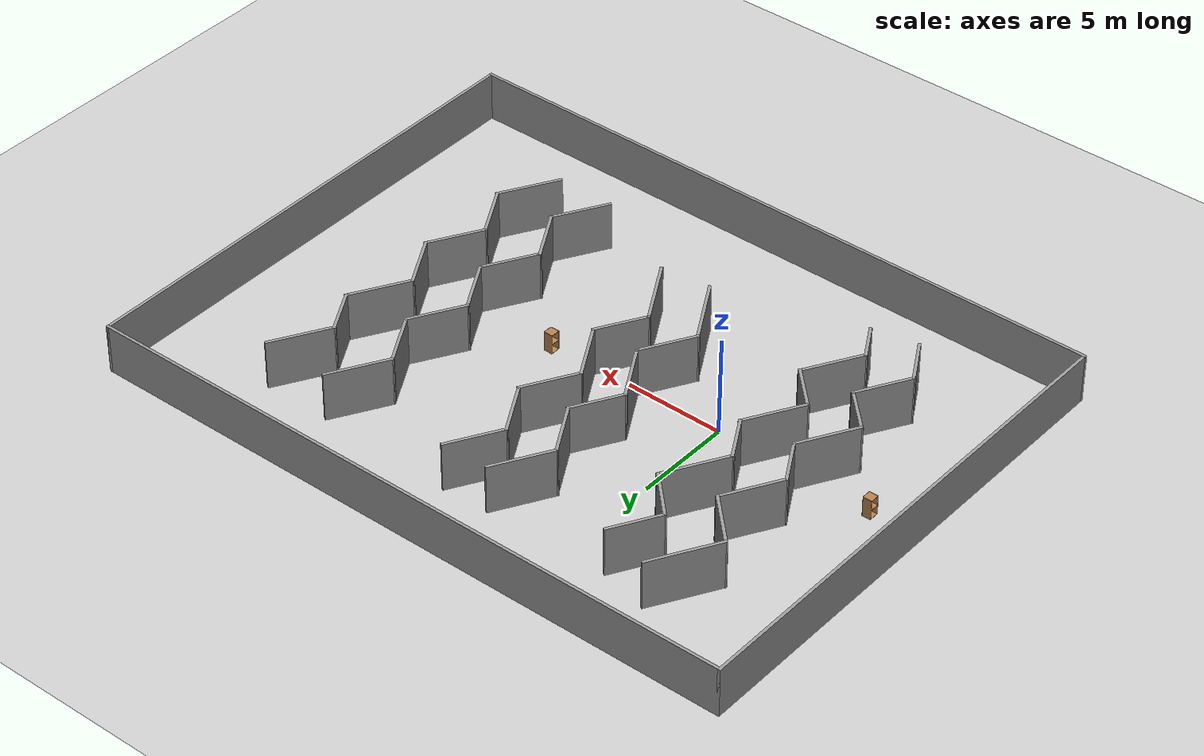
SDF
<sdf version="1.6">
 <world name="default">
  <light name="sun" type="directional">
   <pose>0 0 10 0 -0 0</pose>
   <diffuse>0.8 0.8 0.8 1</diffuse>
   <specular>0.2 0.2 0.2 1</specular>
   <attenuation>
    <range>1000</range>
    <constant>0.9</constant>
    <linear>0.01</linear>
    <quadratic>0.001</quadratic>
   </attenuation>
   <direction>-0.5 0.1 -0.9</direction>
  </light>
  <model name="ground_plane">
   <static>1</static>
   <link name="link">
    <collision name="collision">
     <geometry><plane><normal>0 0 1</normal><size>100 100</size></plane></geometry>
     <surface><friction><ode><mu>100</mu><mu2>50</mu2></ode></friction></surface>
    </collision>
    <visual name="visual">
     <cast_shadows>0</cast_shadows>
     <geometry><plane><normal>0 0 1</normal><size>100 100</size></plane></geometry>
     <material>
      <script><uri>file://media/materials/scripts/gazebo.material</uri><name>Gazebo/Grey</name></script>
     </material>
    </visual>
   </link>
  </model>
  <gravity>0 0 -9.8</gravity>
  <magnetic_field>6e-06 2.3e-05 -4.2e-05</magnetic_field>
  <atmosphere type="adiabatic"/>
  <physics name="default_physics" default="0" type="ode">
   <max_step_size>0.001</max_step_size>
   <real_time_factor>1</real_time_factor>
   <real_time_update_rate>1000</real_time_update_rate>
  </physics>
  <scene><ambient>0.4 0.4 0.4 1</ambient><background>0.7 0.7 0.7 1</background><shadows>1</shadows></scene>
  <audio><device>default</device></audio>
  <spherical_coordinates>
   <surface_model>EARTH_WGS84</surface_model>
   <latitude_deg>0</latitude_deg>
   <longitude_deg>0</longitude_deg>
   <elevation>0</elevation>
   <heading_deg>0</heading_deg>
  </spherical_coordinates>
  <model name="room4">
   <pose>6.21093 1.02307 0 0 -0 0</pose>
   <link name="Wall_1">
    <collision name="Wall_1_Collision">
     <geometry><box><size>34.25 0.15 2.5</size></box></geometry>
     <pose>0 0 1.25 0 -0 0</pose>
    </collision>
    <visual name="Wall_1_Visual">
     <pose>0 0 1.25 0 -0 0</pose>
     <geometry><box><size>34.25 0.15 2.5</size></box></geometry>
     <material>
      <script><uri>file://media/materials/scripts/gazebo.material</uri><name>Gazebo/Grey</name></script>
      <ambient>1 1 1 1</ambient>
     </material>
     <meta><layer>0</layer></meta>
    </visual>
    <pose>-0 12.8 0 0 -0 0</pose>
   </link>
   <link name="Wall_10">
    <collision name="Wall_10_Collision">
     <geometry><box><size>2.5 0.15 2.5</size></box></geometry>
     <pose>0 0 1.25 0 -0 0</pose>
    </collision>
    <visual name="Wall_10_Visual">
     <pose>0 0 1.25 0 -0 0</pose>
     <geometry><box><size>2.5 0.15 2.5</size></box></geometry>
     <material>
      <script><uri>file://media/materials/scripts/gazebo.material</uri><name>Gazebo/Grey</name></script>
      <ambient>1 1 1 1</ambient>
     </material>
     <meta><layer>0</layer></meta>
    </visual>
    <pose>-11.517 0.997475 0 0 -0 -1.0472</pose>
   </link>
   <link name="Wall_11">
    <collision name="Wall_11_Collision">
     <geometry><box><size>3.25 0.15 2.5</size></box></geometry>
     <pose>0 0 1.25 0 -0 0</pose>
    </collision>
    <visual name="Wall_11_Visual">
     <pose>0 0 1.25 0 -0 0</pose>
     <geometry><box><size>3.25 0.15 2.5</size></box></geometry>
     <material>
      <script><uri>file://media/materials/scripts/gazebo.material</uri><name>Gazebo/Grey</name></script>
      <ambient>1 1 1 1</ambient>
     </material>
     <meta><layer>0</layer></meta>
    </visual>
    <pose>-11.7045 -1.36244 0 0 -0 -2.0944</pose>
   </link>
   <link name="Wall_12">
    <collision name="Wall_12_Collision">
     <geometry><box><size>2.5 0.15 2.5</size></box></geometry>
     <pose>0 0 1.25 0 -0 0</pose>
    </collision>
    <visual name="Wall_12_Visual">
     <pose>0 0 1.25 0 -0 0</pose>
     <geometry><box><size>2.5 0.15 2.5</size></box></geometry>
     <material>
      <script><uri>file://media/materials/scripts/gazebo.material</uri><name>Gazebo/Grey</name></script>
      <ambient>1 1 1 1</ambient>
     </material>
     <meta><layer>0</layer></meta>
    </visual>
    <pose>-11.6486 -3.53563 0 0 -0 -0.785398</pose>
   </link>
   <link name="Wall_13">
    <collision name="Wall_13_Collision">
     <geometry><box><size>3 0.15 2.5</size></box></geometry>
     <pose>0 0 1.25 0 -0 0</pose>
    </collision>
    <visual name="Wall_13_Visual">
     <pose>0 0 1.25 0 -0 0</pose>
     <geometry><box><size>3 0.15 2.5</size></box></geometry>
     <material>
      <script><uri>file://media/materials/scripts/gazebo.material</uri><name>Gazebo/Grey</name></script>
      <ambient>1 1 1 1</ambient>
     </material>
     <meta><layer>0</layer></meta>
    </visual>
    <pose>-11.5303 -5.60057 0 0 -0 -2.0944</pose>
   </link>
   <link name="Wall_14">
    <collision name="Wall_14_Collision">
     <geometry><box><size>2.5 0.15 2.5</size></box></geometry>
     <pose>0 0 1.25 0 -0 0</pose>
    </collision>
    <visual name="Wall_14_Visual">
     <pose>0 0 1.25 0 -0 0</pose>
     <geometry><box><size>2.5 0.15 2.5</size></box></geometry>
     <material>
      <script><uri>file://media/materials/scripts/gazebo.material</uri><name>Gazebo/Grey</name></script>
      <ambient>1 1 1 1</ambient>
     </material>
     <meta><layer>0</layer></meta>
    </visual>
    <pose>-11.6553 -7.85224 0 0 -0 -1.0472</pose>
   </link>
   <link name="Wall_16">
    <collision name="Wall_16_Collision">
     <geometry><box><size>2.75 0.15 2.5</size></box></geometry>
     <pose>0 0 1.25 0 -0 0</pose>
    </collision>
    <visual name="Wall_16_Visual">
     <pose>0 0 1.25 0 -0 0</pose>
     <geometry><box><size>2.75 0.15 2.5</size></box></geometry>
     <material>
      <script><uri>file://media/materials/scripts/gazebo.material</uri><name>Gazebo/Grey</name></script>
      <ambient>1 1 1 1</ambient>
     </material>
     <meta><layer>0</layer></meta>
    </visual>
    <pose>-8.94589 8.12164 0 0 -0 -2.0944</pose>
   </link>
   <link name="Wall_17">
    <collision name="Wall_17_Collision">
     <geometry><box><size>2.75 0.15 2.5</size></box></geometry>
     <pose>0 0 1.25 0 -0 0</pose>
    </collision>
    <visual name="Wall_17_Visual">
     <pose>0 0 1.25 0 -0 0</pose>
     <geometry><box><size>2.75 0.15 2.5</size></box></geometry>
     <material>
      <script><uri>file://media/materials/scripts/gazebo.material</uri><name>Gazebo/Grey</name></script>
      <ambient>1 1 1 1</ambient>
     </material>
     <meta><layer>0</layer></meta>
    </visual>
    <pose>-8.67665 6.07657 0 0 -0 -0.785398</pose>
   </link>
   <link name="Wall_18">
    <collision name="Wall_18_Collision">
     <geometry><box><size>3.5 0.15 2.5</size></box></geometry>
     <pose>0 0 1.25 0 -0 0</pose>
    </collision>
    <visual name="Wall_18_Visual">
     <pose>0 0 1.25 0 -0 0</pose>
     <geometry><box><size>3.5 0.15 2.5</size></box></geometry>
     <material>
      <script><uri>file://media/materials/scripts/gazebo.material</uri><name>Gazebo/Grey</name></script>
      <ambient>1 1 1 1</ambient>
     </material>
     <meta><layer>0</layer></meta>
    </visual>
    <pose>-8.59491 3.70674 0 0 -0 -2.0944</pose>
   </link>
   <link name="Wall_19">
    <collision name="Wall_19_Collision">
     <geometry><box><size>2.5 0.15 2.5</size></box></geometry>
     <pose>0 0 1.25 0 -0 0</pose>
    </collision>
    <visual name="Wall_19_Visual">
     <pose>0 0 1.25 0 -0 0</pose>
     <geometry><box><size>2.5 0.15 2.5</size></box></geometry>
     <material>
      <script><uri>file://media/materials/scripts/gazebo.material</uri><name>Gazebo/Grey</name></script>
      <ambient>1 1 1 1</ambient>
     </material>
     <meta><layer>0</layer></meta>
    </visual>
    <pose>-8.84491 1.23857 0 0 -0 -1.0472</pose>
   </link>
   <link name="Wall_20">
    <collision name="Wall_20_Collision">
     <geometry><box><size>3.25 0.15 2.5</size></box></geometry>
     <pose>0 0 1.25 0 -0 0</pose>
    </collision>
    <visual name="Wall_20_Visual">
     <pose>0 0 1.25 0 -0 0</pose>
     <geometry><box><size>3.25 0.15 2.5</size></box></geometry>
     <material>
      <script><uri>file://media/materials/scripts/gazebo.material</uri><name>Gazebo/Grey</name></script>
      <ambient>1 1 1 1</ambient>
     </material>
     <meta><layer>0</layer></meta>
    </visual>
    <pose>-9.03241 -1.12135 0 0 -0 -2.0944</pose>
   </link>
   <link name="Wall_21">
    <collision name="Wall_21_Collision">
     <geometry><box><size>2.5 0.15 2.5</size></box></geometry>
     <pose>0 0 1.25 0 -0 0</pose>
    </collision>
    <visual name="Wall_21_Visual">
     <pose>0 0 1.25 0 -0 0</pose>
     <geometry><box><size>2.5 0.15 2.5</size></box></geometry>
     <material>
      <script><uri>file://media/materials/scripts/gazebo.material</uri><name>Gazebo/Grey</name></script>
      <ambient>1 1 1 1</ambient>
     </material>
     <meta><layer>0</layer></meta>
    </visual>
    <pose>-8.97656 -3.29454 0 0 -0 -0.785398</pose>
   </link>
   <link name="Wall_22">
    <collision name="Wall_22_Collision">
     <geometry><box><size>3.25 0.15 2.5</size></box></geometry>
     <pose>0 0 1.25 0 -0 0</pose>
    </collision>
    <visual name="Wall_22_Visual">
     <pose>0 0 1.25 0 -0 0</pose>
     <geometry><box><size>3.25 0.15 2.5</size></box></geometry>
     <material>
      <script><uri>file://media/materials/scripts/gazebo.material</uri><name>Gazebo/Grey</name></script>
      <ambient>1 1 1 1</ambient>
     </material>
     <meta><layer>0</layer></meta>
    </visual>
    <pose>-8.92071 -5.46773 0 0 -0 -2.0944</pose>
   </link>
   <link name="Wall_23">
    <collision name="Wall_23_Collision">
     <geometry><box><size>2 0.15 2.5</size></box></geometry>
     <pose>0 0 1.25 0 -0 0</pose>
    </collision>
    <visual name="Wall_23_Visual">
     <pose>0 0 1.25 0 -0 0</pose>
     <geometry><box><size>2 0.15 2.5</size></box></geometry>
     <material>
      <script><uri>file://media/materials/scripts/gazebo.material</uri><name>Gazebo/Grey</name></script>
      <ambient>1 1 1 1</ambient>
     </material>
     <meta><layer>0</layer></meta>
    </visual>
    <pose>-9.23321 -7.61114 0 0 -0 -1.0472</pose>
   </link>
   <link name="Wall_28">
    <collision name="Wall_28_Collision">
     <geometry><box><size>3.25 0.15 2.5</size></box></geometry>
     <pose>0 0 1.25 0 -0 0</pose>
    </collision>
    <visual name="Wall_28_Visual">
     <pose>0 0 1.25 0 -0 0</pose>
     <geometry><box><size>3.25 0.15 2.5</size></box></geometry>
     <material>
      <script><uri>file://media/materials/scripts/gazebo.material</uri><name>Gazebo/Grey</name></script>
      <ambient>1 1 1 1</ambient>
     </material>
     <meta><layer>0</layer></meta>
    </visual>
    <pose>-2.74004 8.03814 0 0 -0 -2.0944</pose>
   </link>
   <link name="Wall_29">
    <collision name="Wall_29_Collision">
     <geometry><box><size>3 0.15 2.5</size></box></geometry>
     <pose>0 0 1.25 0 -0 0</pose>
    </collision>
    <visual name="Wall_29_Visual">
     <pose>0 0 1.25 0 -0 0</pose>
     <geometry><box><size>3 0.15 2.5</size></box></geometry>
     <material>
      <script><uri>file://media/materials/scripts/gazebo.material</uri><name>Gazebo/Grey</name></script>
      <ambient>1 1 1 1</ambient>
     </material>
     <meta><layer>0</layer></meta>
    </visual>
    <pose>-2.80254 5.46171 0 0 -0 -1.0472</pose>
   </link>
   <link name="Wall_3">
    <collision name="Wall_3_Collision">
     <geometry><box><size>25.75 0.15 2.5</size></box></geometry>
     <pose>0 0 1.25 0 -0 0</pose>
    </collision>
    <visual name="Wall_3_Visual">
     <pose>0 0 1.25 0 -0 0</pose>
     <geometry><box><size>25.75 0.15 2.5</size></box></geometry>
     <material>
      <script><uri>file://media/materials/scripts/gazebo.material</uri><name>Gazebo/Grey</name></script>
      <ambient>1 1 1 1</ambient>
     </material>
     <meta><layer>0</layer></meta>
    </visual>
    <pose>17.05 0 0 0 -0 -1.5708</pose>
   </link>
   <link name="Wall_30">
    <collision name="Wall_30_Collision">
     <geometry><box><size>2.75 0.15 2.5</size></box></geometry>
     <pose>0 0 1.25 0 -0 0</pose>
    </collision>
    <visual name="Wall_30_Visual">
     <pose>0 0 1.25 0 -0 0</pose>
     <geometry><box><size>2.75 0.15 2.5</size></box></geometry>
     <material>
      <script><uri>file://media/materials/scripts/gazebo.material</uri><name>Gazebo/Grey</name></script>
      <ambient>1 1 1 1</ambient>
     </material>
     <meta><layer>0</layer></meta>
    </visual>
    <pose>-2.74004 3.10179 0 0 -0 -2.0944</pose>
   </link>
   <link name="Wall_31">
    <collision name="Wall_31_Collision">
     <geometry><box><size>3.25 0.15 2.5</size></box></geometry>
     <pose>0 0 1.25 0 -0 0</pose>
    </collision>
    <visual name="Wall_31_Visual">
     <pose>0 0 1.25 0 -0 0</pose>
     <geometry><box><size>3.25 0.15 2.5</size></box></geometry>
     <material>
      <script><uri>file://media/materials/scripts/gazebo.material</uri><name>Gazebo/Grey</name></script>
      <ambient>1 1 1 1</ambient>
     </material>
     <meta><layer>0</layer></meta>
    </visual>
    <pose>-2.61504 0.63362 0 0 -0 -1.0472</pose>
   </link>
   <link name="Wall_32">
    <collision name="Wall_32_Collision">
     <geometry><box><size>3 0.15 2.5</size></box></geometry>
     <pose>0 0 1.25 0 -0 0</pose>
    </collision>
    <visual name="Wall_32_Visual">
     <pose>0 0 1.25 0 -0 0</pose>
     <geometry><box><size>3 0.15 2.5</size></box></geometry>
     <material>
      <script><uri>file://media/materials/scripts/gazebo.material</uri><name>Gazebo/Grey</name></script>
      <ambient>1 1 1 1</ambient>
     </material>
     <meta><layer>0</layer></meta>
    </visual>
    <pose>-2.55254 -1.94281 0 0 -0 -2.0944</pose>
   </link>
   <link name="Wall_33">
    <collision name="Wall_33_Collision">
     <geometry><box><size>3.75 0.15 2.5</size></box></geometry>
     <pose>0 0 1.25 0 -0 0</pose>
    </collision>
    <visual name="Wall_33_Visual">
     <pose>0 0 1.25 0 -0 0</pose>
     <geometry><box><size>3.75 0.15 2.5</size></box></geometry>
     <material>
      <script><uri>file://media/materials/scripts/gazebo.material</uri><name>Gazebo/Grey</name></script>
      <ambient>1 1 1 1</ambient>
     </material>
     <meta><layer>0</layer></meta>
    </visual>
    <pose>-2.36504 -4.73574 0 0 -0 -1.0472</pose>
   </link>
   <link name="Wall_35">
    <collision name="Wall_35_Collision">
     <geometry><box><size>3 0.15 2.5</size></box></geometry>
     <pose>0 0 1.25 0 -0 0</pose>
    </collision>
    <visual name="Wall_35_Visual">
     <pose>0 0 1.25 0 -0 0</pose>
     <geometry><box><size>3 0.15 2.5</size></box></geometry>
     <material>
      <script><uri>file://media/materials/scripts/gazebo.material</uri><name>Gazebo/Grey</name></script>
      <ambient>1 1 1 1</ambient>
     </material>
     <meta><layer>0</layer></meta>
    </visual>
    <pose>-0.283526 8.22619 0 0 -0 -2.0944</pose>
   </link>
   <link name="Wall_36">
    <collision name="Wall_36_Collision">
     <geometry><box><size>3 0.15 2.5</size></box></geometry>
     <pose>0 0 1.25 0 -0 0</pose>
    </collision>
    <visual name="Wall_36_Visual">
     <pose>0 0 1.25 0 -0 0</pose>
     <geometry><box><size>3 0.15 2.5</size></box></geometry>
     <material>
      <script><uri>file://media/materials/scripts/gazebo.material</uri><name>Gazebo/Grey</name></script>
      <ambient>1 1 1 1</ambient>
     </material>
     <meta><layer>0</layer></meta>
    </visual>
    <pose>-0.283526 5.75802 0 0 -0 -1.0472</pose>
   </link>
   <link name="Wall_37">
    <collision name="Wall_37_Collision">
     <geometry><box><size>3 0.15 2.5</size></box></geometry>
     <pose>0 0 1.25 0 -0 0</pose>
    </collision>
    <visual name="Wall_37_Visual">
     <pose>0 0 1.25 0 -0 0</pose>
     <geometry><box><size>3 0.15 2.5</size></box></geometry>
     <material>
      <script><uri>file://media/materials/scripts/gazebo.material</uri><name>Gazebo/Grey</name></script>
      <ambient>1 1 1 1</ambient>
     </material>
     <meta><layer>0</layer></meta>
    </visual>
    <pose>-0.283526 3.28985 0 0 -0 -2.0944</pose>
   </link>
   <link name="Wall_38">
    <collision name="Wall_38_Collision">
     <geometry><box><size>3.25 0.15 2.5</size></box></geometry>
     <pose>0 0 1.25 0 -0 0</pose>
    </collision>
    <visual name="Wall_38_Visual">
     <pose>0 0 1.25 0 -0 0</pose>
     <geometry><box><size>3.25 0.15 2.5</size></box></geometry>
     <material>
      <script><uri>file://media/materials/scripts/gazebo.material</uri><name>Gazebo/Grey</name></script>
      <ambient>1 1 1 1</ambient>
     </material>
     <meta><layer>0</layer></meta>
    </visual>
    <pose>-0.221026 0.71342 0 0 -0 -1.0472</pose>
   </link>
   <link name="Wall_39">
    <collision name="Wall_39_Collision">
     <geometry><box><size>2.75 0.15 2.5</size></box></geometry>
     <pose>0 0 1.25 0 -0 0</pose>
    </collision>
    <visual name="Wall_39_Visual">
     <pose>0 0 1.25 0 -0 0</pose>
     <geometry><box><size>2.75 0.15 2.5</size></box></geometry>
     <material>
      <script><uri>file://media/materials/scripts/gazebo.material</uri><name>Gazebo/Grey</name></script>
      <ambient>1 1 1 1</ambient>
     </material>
     <meta><layer>0</layer></meta>
    </visual>
    <pose>-0.096026 -1.75475 0 0 -0 -2.0944</pose>
   </link>
   <link name="Wall_4">
    <collision name="Wall_4_Collision">
     <geometry><box><size>34.25 0.15 2.5</size></box></geometry>
     <pose>0 0 1.25 0 -0 0</pose>
    </collision>
    <visual name="Wall_4_Visual">
     <pose>0 0 1.25 0 -0 0</pose>
     <geometry><box><size>34.25 0.15 2.5</size></box></geometry>
     <material>
      <script><uri>file://media/materials/scripts/gazebo.material</uri><name>Gazebo/Grey</name></script>
      <ambient>1 1 1 1</ambient>
     </material>
     <meta><layer>0</layer></meta>
    </visual>
    <pose>-0 -12.8 0 0 -0 3.14159</pose>
   </link>
   <link name="Wall_40">
    <collision name="Wall_40_Collision">
     <geometry><box><size>3.75 0.15 2.5</size></box></geometry>
     <pose>0 0 1.25 0 -0 0</pose>
    </collision>
    <visual name="Wall_40_Visual">
     <pose>0 0 1.25 0 -0 0</pose>
     <geometry><box><size>3.75 0.15 2.5</size></box></geometry>
     <material>
      <script><uri>file://media/materials/scripts/gazebo.material</uri><name>Gazebo/Grey</name></script>
      <ambient>1 1 1 1</ambient>
     </material>
     <meta><layer>0</layer></meta>
    </visual>
    <pose>0.153974 -4.43943 0 0 -0 -1.0472</pose>
   </link>
   <link name="Wall_42">
    <collision name="Wall_42_Collision">
     <geometry><box><size>3.25 0.15 2.5</size></box></geometry>
     <pose>0 0 1.25 0 -0 0</pose>
    </collision>
    <visual name="Wall_42_Visual">
     <pose>0 0 1.25 0 -0 0</pose>
     <geometry><box><size>3.25 0.15 2.5</size></box></geometry>
     <material>
      <script><uri>file://media/materials/scripts/gazebo.material</uri><name>Gazebo/Grey</name></script>
      <ambient>1 1 1 1</ambient>
     </material>
     <meta><layer>0</layer></meta>
    </visual>
    <pose>6.70303 7.87854 0 0 -0 -2.0944</pose>
   </link>
   <link name="Wall_43">
    <collision name="Wall_43_Collision">
     <geometry><box><size>3 0.15 2.5</size></box></geometry>
     <pose>0 0 1.25 0 -0 0</pose>
    </collision>
    <visual name="Wall_43_Visual">
     <pose>0 0 1.25 0 -0 0</pose>
     <geometry><box><size>3 0.15 2.5</size></box></geometry>
     <material>
      <script><uri>file://media/materials/scripts/gazebo.material</uri><name>Gazebo/Grey</name></script>
      <ambient>1 1 1 1</ambient>
     </material>
     <meta><layer>0</layer></meta>
    </visual>
    <pose>6.64053 5.30211 0 0 -0 -1.0472</pose>
   </link>
   <link name="Wall_44">
    <collision name="Wall_44_Collision">
     <geometry><box><size>3 0.15 2.5</size></box></geometry>
     <pose>0 0 1.25 0 -0 0</pose>
    </collision>
    <visual name="Wall_44_Visual">
     <pose>0 0 1.25 0 -0 0</pose>
     <geometry><box><size>3 0.15 2.5</size></box></geometry>
     <material>
      <script><uri>file://media/materials/scripts/gazebo.material</uri><name>Gazebo/Grey</name></script>
      <ambient>1 1 1 1</ambient>
     </material>
     <meta><layer>0</layer></meta>
    </visual>
    <pose>6.64053 2.83394 0 0 -0 -2.0944</pose>
   </link>
   <link name="Wall_45">
    <collision name="Wall_45_Collision">
     <geometry><box><size>3 0.15 2.5</size></box></geometry>
     <pose>0 0 1.25 0 -0 0</pose>
    </collision>
    <visual name="Wall_45_Visual">
     <pose>0 0 1.25 0 -0 0</pose>
     <geometry><box><size>3 0.15 2.5</size></box></geometry>
     <material>
      <script><uri>file://media/materials/scripts/gazebo.material</uri><name>Gazebo/Grey</name></script>
      <ambient>1 1 1 1</ambient>
     </material>
     <meta><layer>0</layer></meta>
    </visual>
    <pose>6.64053 0.365765 0 0 -0 -1.0472</pose>
   </link>
   <link name="Wall_46">
    <collision name="Wall_46_Collision">
     <geometry><box><size>3 0.15 2.5</size></box></geometry>
     <pose>0 0 1.25 0 -0 0</pose>
    </collision>
    <visual name="Wall_46_Visual">
     <pose>0 0 1.25 0 -0 0</pose>
     <geometry><box><size>3 0.15 2.5</size></box></geometry>
     <material>
      <script><uri>file://media/materials/scripts/gazebo.material</uri><name>Gazebo/Grey</name></script>
      <ambient>1 1 1 1</ambient>
     </material>
     <meta><layer>0</layer></meta>
    </visual>
    <pose>6.64053 -2.10241 0 0 -0 -2.0944</pose>
   </link>
   <link name="Wall_47">
    <collision name="Wall_47_Collision">
     <geometry><box><size>3 0.15 2.5</size></box></geometry>
     <pose>0 0 1.25 0 -0 0</pose>
    </collision>
    <visual name="Wall_47_Visual">
     <pose>0 0 1.25 0 -0 0</pose>
     <geometry><box><size>3 0.15 2.5</size></box></geometry>
     <material>
      <script><uri>file://media/materials/scripts/gazebo.material</uri><name>Gazebo/Grey</name></script>
      <ambient>1 1 1 1</ambient>
     </material>
     <meta><layer>0</layer></meta>
    </visual>
    <pose>6.64053 -4.57058 0 0 -0 -1.0472</pose>
   </link>
   <link name="Wall_48">
    <collision name="Wall_48_Collision">
     <geometry><box><size>3 0.15 2.5</size></box></geometry>
     <pose>0 0 1.25 0 -0 0</pose>
    </collision>
    <visual name="Wall_48_Visual">
     <pose>0 0 1.25 0 -0 0</pose>
     <geometry><box><size>3 0.15 2.5</size></box></geometry>
     <material>
      <script><uri>file://media/materials/scripts/gazebo.material</uri><name>Gazebo/Grey</name></script>
      <ambient>1 1 1 1</ambient>
     </material>
     <meta><layer>0</layer></meta>
    </visual>
    <pose>6.64053 -7.03875 0 0 -0 -2.0944</pose>
   </link>
   <link name="Wall_5">
    <collision name="Wall_5_Collision">
     <geometry><box><size>25.75 0.15 2.5</size></box></geometry>
     <pose>0 0 1.25 0 -0 0</pose>
    </collision>
    <visual name="Wall_5_Visual">
     <pose>0 0 1.25 0 -0 0</pose>
     <geometry><box><size>25.75 0.15 2.5</size></box></geometry>
     <material>
      <script><uri>file://media/materials/scripts/gazebo.material</uri><name>Gazebo/Grey</name></script>
      <ambient>1 1 1 1</ambient>
     </material>
     <meta><layer>0</layer></meta>
    </visual>
    <pose>-17.05 0 0 0 -0 1.5708</pose>
   </link>
   <link name="Wall_50">
    <collision name="Wall_50_Collision">
     <geometry><box><size>3.25 0.15 2.5</size></box></geometry>
     <pose>0 0 1.25 0 -0 0</pose>
    </collision>
    <visual name="Wall_50_Visual">
     <pose>0 0 1.25 0 -0 0</pose>
     <geometry><box><size>3.25 0.15 2.5</size></box></geometry>
     <material>
      <script><uri>file://media/materials/scripts/gazebo.material</uri><name>Gazebo/Grey</name></script>
      <ambient>1 1 1 1</ambient>
     </material>
     <meta><layer>0</layer></meta>
    </visual>
    <pose>10.1611 7.85194 0 0 -0 -2.0944</pose>
   </link>
   <link name="Wall_51">
    <collision name="Wall_51_Collision">
     <geometry><box><size>2.5 0.15 2.5</size></box></geometry>
     <pose>0 0 1.25 0 -0 0</pose>
    </collision>
    <visual name="Wall_51_Visual">
     <pose>0 0 1.25 0 -0 0</pose>
     <geometry><box><size>2.5 0.15 2.5</size></box></geometry>
     <material>
      <script><uri>file://media/materials/scripts/gazebo.material</uri><name>Gazebo/Grey</name></script>
      <ambient>1 1 1 1</ambient>
     </material>
     <meta><layer>0</layer></meta>
    </visual>
    <pose>9.97355 5.49202 0 0 -0 -1.0472</pose>
   </link>
   <link name="Wall_52">
    <collision name="Wall_52_Collision">
     <geometry><box><size>3.25 0.15 2.5</size></box></geometry>
     <pose>0 0 1.25 0 -0 0</pose>
    </collision>
    <visual name="Wall_52_Visual">
     <pose>0 0 1.25 0 -0 0</pose>
     <geometry><box><size>3.25 0.15 2.5</size></box></geometry>
     <material>
      <script><uri>file://media/materials/scripts/gazebo.material</uri><name>Gazebo/Grey</name></script>
      <ambient>1 1 1 1</ambient>
     </material>
     <meta><layer>0</layer></meta>
    </visual>
    <pose>9.78605 3.1321 0 0 -0 -2.0944</pose>
   </link>
   <link name="Wall_53">
    <collision name="Wall_53_Collision">
     <geometry><box><size>3 0.15 2.5</size></box></geometry>
     <pose>0 0 1.25 0 -0 0</pose>
    </collision>
    <visual name="Wall_53_Visual">
     <pose>0 0 1.25 0 -0 0</pose>
     <geometry><box><size>3 0.15 2.5</size></box></geometry>
     <material>
      <script><uri>file://media/materials/scripts/gazebo.material</uri><name>Gazebo/Grey</name></script>
      <ambient>1 1 1 1</ambient>
     </material>
     <meta><layer>0</layer></meta>
    </visual>
    <pose>9.72355 0.555671 0 0 -0 -1.0472</pose>
   </link>
   <link name="Wall_54">
    <collision name="Wall_54_Collision">
     <geometry><box><size>3 0.15 2.5</size></box></geometry>
     <pose>0 0 1.25 0 -0 0</pose>
    </collision>
    <visual name="Wall_54_Visual">
     <pose>0 0 1.25 0 -0 0</pose>
     <geometry><box><size>3 0.15 2.5</size></box></geometry>
     <material>
      <script><uri>file://media/materials/scripts/gazebo.material</uri><name>Gazebo/Grey</name></script>
      <ambient>1 1 1 1</ambient>
     </material>
     <meta><layer>0</layer></meta>
    </visual>
    <pose>9.72355 -1.9125 0 0 -0 -2.0944</pose>
   </link>
   <link name="Wall_55">
    <collision name="Wall_55_Collision">
     <geometry><box><size>3 0.15 2.5</size></box></geometry>
     <pose>0 0 1.25 0 -0 0</pose>
    </collision>
    <visual name="Wall_55_Visual">
     <pose>0 0 1.25 0 -0 0</pose>
     <geometry><box><size>3 0.15 2.5</size></box></geometry>
     <material>
      <script><uri>file://media/materials/scripts/gazebo.material</uri><name>Gazebo/Grey</name></script>
      <ambient>1 1 1 1</ambient>
     </material>
     <meta><layer>0</layer></meta>
    </visual>
    <pose>9.72355 -4.38067 0 0 -0 -1.0472</pose>
   </link>
   <link name="Wall_56">
    <collision name="Wall_56_Collision">
     <geometry><box><size>3.25 0.15 2.5</size></box></geometry>
     <pose>0 0 1.25 0 -0 0</pose>
    </collision>
    <visual name="Wall_56_Visual">
     <pose>0 0 1.25 0 -0 0</pose>
     <geometry><box><size>3.25 0.15 2.5</size></box></geometry>
     <material>
      <script><uri>file://media/materials/scripts/gazebo.material</uri><name>Gazebo/Grey</name></script>
      <ambient>1 1 1 1</ambient>
     </material>
     <meta><layer>0</layer></meta>
    </visual>
    <pose>9.66105 -6.9571 0 0 -0 -2.0944</pose>
   </link>
   <link name="Wall_7">
    <collision name="Wall_7_Collision">
     <geometry><box><size>3.75 0.15 2.5</size></box></geometry>
     <pose>0 0 1.25 0 -0 0</pose>
    </collision>
    <visual name="Wall_7_Visual">
     <pose>0 0 1.25 0 -0 0</pose>
     <geometry><box><size>3.75 0.15 2.5</size></box></geometry>
     <material>
      <script><uri>file://media/materials/scripts/gazebo.material</uri><name>Gazebo/Grey</name></script>
      <ambient>1 1 1 1</ambient>
     </material>
     <meta><layer>0</layer></meta>
    </visual>
    <pose>-11.6697 8.27383 0 0 -0 -2.0944</pose>
   </link>
   <link name="Wall_8">
    <collision name="Wall_8_Collision">
     <geometry><box><size>3 0.15 2.5</size></box></geometry>
     <pose>0 0 1.25 0 -0 0</pose>
    </collision>
    <visual name="Wall_8_Visual">
     <pose>0 0 1.25 0 -0 0</pose>
     <geometry><box><size>3 0.15 2.5</size></box></geometry>
     <material>
      <script><uri>file://media/materials/scripts/gazebo.material</uri><name>Gazebo/Grey</name></script>
      <ambient>1 1 1 1</ambient>
     </material>
     <meta><layer>0</layer></meta>
    </visual>
    <pose>-11.5621 5.70736 0 0 -0 -0.785398</pose>
   </link>
   <link name="Wall_9">
    <collision name="Wall_9_Collision">
     <geometry><box><size>3.25 0.15 2.5</size></box></geometry>
     <pose>0 0 1.25 0 -0 0</pose>
    </collision>
    <visual name="Wall_9_Visual">
     <pose>0 0 1.25 0 -0 0</pose>
     <geometry><box><size>3.25 0.15 2.5</size></box></geometry>
     <material>
      <script><uri>file://media/materials/scripts/gazebo.material</uri><name>Gazebo/Grey</name></script>
      <ambient>1 1 1 1</ambient>
     </material>
     <meta><layer>0</layer></meta>
    </visual>
    <pose>-11.3295 3.35739 0 0 -0 -2.0944</pose>
   </link>
   <static>1</static>
  </model>
  <model name="cabinet">
   <static>1</static>
   <link name="cabinet_bottom_plate">
    <inertial>
     <pose>0 0 -1 0 -0 0</pose>
     <inertia><ixx>2.05</ixx><ixy>0</ixy><ixz>0</ixz><iyy>2.05</iyy><iyz>0</iyz><izz>2.05</izz></inertia>
     <mass>25</mass>
    </inertial>
    <collision name="cabinet_bottom_plate_geom">
     <pose>0 0 0.01 0 -0 0</pose>
     <geometry><box><size>0.45 0.45 0.02</size></box></geometry>
    </collision>
    <visual name="cabinet_bottom_plate_geom_visual">
     <pose>0 0 0.01 0 -0 0</pose>
     <geometry><box><size>0.45 0.45 0.02</size></box></geometry>
     <material>
      <script><uri>file://media/materials/scripts/gazebo.material</uri><name>Gazebo/Wood</name></script>
     </material>
    </visual>
    <collision name="cabinet_bottom_plate_geom_cabinet_back_plate">
     <pose>0.235 0 0.51 0 -0 0</pose>
     <geometry><box><size>0.02 0.45 1.02</size></box></geometry>
    </collision>
    <visual name="cabinet_bottom_plate_geom_cabinet_back_plate_visual">
     <pose>0.235 0 0.51 0 -0 0</pose>
     <geometry><box><size>0.02 0.45 1.02</size></box></geometry>
     <material>
      <script><uri>file://media/materials/scripts/gazebo.material</uri><name>Gazebo/Wood</name></script>
     </material>
    </visual>
    <collision name="cabinet_bottom_plate_geom_cabinet_left_plate">
     <pose>0 0.235 0.51 0 -0 0</pose>
     <geometry><box><size>0.45 0.02 1.02</size></box></geometry>
    </collision>
    <visual name="cabinet_bottom_plate_geom_cabinet_left_plate_visual">
     <pose>0 0.235 0.51 0 -0 0</pose>
     <geometry><box><size>0.45 0.02 1.02</size></box></geometry>
     <material>
      <script><uri>file://media/materials/scripts/gazebo.material</uri><name>Gazebo/Wood</name></script>
     </material>
    </visual>
    <collision name="cabinet_bottom_plate_geom_cabinet_middle_plate">
     <pose>0 0 0.51 0 -0 0</pose>
     <geometry><box><size>0.45 0.45 0.02</size></box></geometry>
    </collision>
    <visual name="cabinet_bottom_plate_geom_cabinet_middle_plate_visual">
     <pose>0 0 0.51 0 -0 0</pose>
     <geometry><box><size>0.45 0.45 0.02</size></box></geometry>
     <material>
      <script><uri>file://media/materials/scripts/gazebo.material</uri><name>Gazebo/Wood</name></script>
     </material>
    </visual>
    <collision name="cabinet_bottom_plate_geom_cabinet_right_plate">
     <pose>0 -0.235 0.51 0 -0 0</pose>
     <geometry><box><size>0.45 0.02 1.02</size></box></geometry>
    </collision>
    <visual name="cabinet_bottom_plate_geom_cabinet_right_plate_visual">
     <pose>0 -0.235 0.51 0 -0 0</pose>
     <geometry><box><size>0.45 0.02 1.02</size></box></geometry>
     <material>
      <script><uri>file://media/materials/scripts/gazebo.material</uri><name>Gazebo/Wood</name></script>
     </material>
    </visual>
    <collision name="cabinet_bottom_plate_geom_cabinet_top_plate">
     <pose>0 0 1.01 0 -0 0</pose>
     <geometry><box><size>0.45 0.45 0.02</size></box></geometry>
    </collision>
    <visual name="cabinet_bottom_plate_geom_cabinet_top_plate_visual">
     <pose>0 0 1.01 0 -0 0</pose>
     <geometry><box><size>0.45 0.45 0.02</size></box></geometry>
     <material>
      <script><uri>file://media/materials/scripts/gazebo.material</uri><name>Gazebo/Wood</name></script>
     </material>
    </visual>
   </link>
   <pose>-10.0695 -10.9003 0 0 -0 0</pose>
  </model>
  <model name="cabinet_0">
   <static>1</static>
   <link name="cabinet_bottom_plate">
    <inertial>
     <pose>0 0 -1 0 -0 0</pose>
     <inertia><ixx>2.05</ixx><ixy>0</ixy><ixz>0</ixz><iyy>2.05</iyy><iyz>0</iyz><izz>2.05</izz></inertia>
     <mass>25</mass>
    </inertial>
    <collision name="cabinet_bottom_plate_geom">
     <pose>0 0 0.01 0 -0 0</pose>
     <geometry><box><size>0.45 0.45 0.02</size></box></geometry>
    </collision>
    <visual name="cabinet_bottom_plate_geom_visual">
     <pose>0 0 0.01 0 -0 0</pose>
     <geometry><box><size>0.45 0.45 0.02</size></box></geometry>
     <material>
      <script><uri>file://media/materials/scripts/gazebo.material</uri><name>Gazebo/Wood</name></script>
     </material>
    </visual>
    <collision name="cabinet_bottom_plate_geom_cabinet_back_plate">
     <pose>0.235 0 0.51 0 -0 0</pose>
     <geometry><box><size>0.02 0.45 1.02</size></box></geometry>
    </collision>
    <visual name="cabinet_bottom_plate_geom_cabinet_back_plate_visual">
     <pose>0.235 0 0.51 0 -0 0</pose>
     <geometry><box><size>0.02 0.45 1.02</size></box></geometry>
     <material>
      <script><uri>file://media/materials/scripts/gazebo.material</uri><name>Gazebo/Wood</name></script>
     </material>
    </visual>
    <collision name="cabinet_bottom_plate_geom_cabinet_left_plate">
     <pose>0 0.235 0.51 0 -0 0</pose>
     <geometry><box><size>0.45 0.02 1.02</size></box></geometry>
    </collision>
    <visual name="cabinet_bottom_plate_geom_cabinet_left_plate_visual">
     <pose>0 0.235 0.51 0 -0 0</pose>
     <geometry><box><size>0.45 0.02 1.02</size></box></geometry>
     <material>
      <script><uri>file://media/materials/scripts/gazebo.material</uri><name>Gazebo/Wood</name></script>
     </material>
    </visual>
    <collision name="cabinet_bottom_plate_geom_cabinet_middle_plate">
     <pose>0 0 0.51 0 -0 0</pose>
     <geometry><box><size>0.45 0.45 0.02</size></box></geometry>
    </collision>
    <visual name="cabinet_bottom_plate_geom_cabinet_middle_plate_visual">
     <pose>0 0 0.51 0 -0 0</pose>
     <geometry><box><size>0.45 0.45 0.02</size></box></geometry>
     <material>
      <script><uri>file://media/materials/scripts/gazebo.material</uri><name>Gazebo/Wood</name></script>
     </material>
    </visual>
    <collision name="cabinet_bottom_plate_geom_cabinet_right_plate">
     <pose>0 -0.235 0.51 0 -0 0</pose>
     <geometry><box><size>0.45 0.02 1.02</size></box></geometry>
    </collision>
    <visual name="cabinet_bottom_plate_geom_cabinet_right_plate_visual">
     <pose>0 -0.235 0.51 0 -0 0</pose>
     <geometry><box><size>0.45 0.02 1.02</size></box></geometry>
     <material>
      <script><uri>file://media/materials/scripts/gazebo.material</uri><name>Gazebo/Wood</name></script>
     </material>
    </visual>
    <collision name="cabinet_bottom_plate_geom_cabinet_top_plate">
     <pose>0 0 1.01 0 -0 0</pose>
     <geometry><box><size>0.45 0.45 0.02</size></box></geometry>
    </collision>
    <visual name="cabinet_bottom_plate_geom_cabinet_top_plate_visual">
     <pose>0 0 1.01 0 -0 0</pose>
     <geometry><box><size>0.45 0.45 0.02</size></box></geometry>
     <material>
      <script><uri>file://media/materials/scripts/gazebo.material</uri><name>Gazebo/Wood</name></script>
     </material>
    </visual>
   </link>
   <pose>-8.27996 0.267012 0 0 -0 0</pose>
  </model>
  <model name="cabinet_1">
   <static>1</static>
   <link name="cabinet_bottom_plate">
    <inertial>
     <pose>0 0 -1 0 -0 0</pose>
     <inertia><ixx>2.05</ixx><ixy>0</ixy><ixz>0</ixz><iyy>2.05</iyy><iyz>0</iyz><izz>2.05</izz></inertia>
     <mass>25</mass>
    </inertial>
    <collision name="cabinet_bottom_plate_geom">
     <pose>0 0 0.01 0 -0 0</pose>
     <geometry><box><size>0.45 0.45 0.02</size></box></geometry>
    </collision>
    <visual name="cabinet_bottom_plate_geom_visual">
     <pose>0 0 0.01 0 -0 0</pose>
     <geometry><box><size>0.45 0.45 0.02</size></box></geometry>
     <material>
      <script><uri>file://media/materials/scripts/gazebo.material</uri><name>Gazebo/Wood</name></script>
     </material>
    </visual>
    <collision name="cabinet_bottom_plate_geom_cabinet_back_plate">
     <pose>0.235 0 0.51 0 -0 0</pose>
     <geometry><box><size>0.02 0.45 1.02</size></box></geometry>
    </collision>
    <visual name="cabinet_bottom_plate_geom_cabinet_back_plate_visual">
     <pose>0.235 0 0.51 0 -0 0</pose>
     <geometry><box><size>0.02 0.45 1.02</size></box></geometry>
     <material>
      <script><uri>file://media/materials/scripts/gazebo.material</uri><name>Gazebo/Wood</name></script>
     </material>
    </visual>
    <collision name="cabinet_bottom_plate_geom_cabinet_left_plate">
     <pose>0 0.235 0.51 0 -0 0</pose>
     <geometry><box><size>0.45 0.02 1.02</size></box></geometry>
    </collision>
    <visual name="cabinet_bottom_plate_geom_cabinet_left_plate_visual">
     <pose>0 0.235 0.51 0 -0 0</pose>
     <geometry><box><size>0.45 0.02 1.02</size></box></geometry>
     <material>
      <script><uri>file://media/materials/scripts/gazebo.material</uri><name>Gazebo/Wood</name></script>
     </material>
    </visual>
    <collision name="cabinet_bottom_plate_geom_cabinet_middle_plate">
     <pose>0 0 0.51 0 -0 0</pose>
     <geometry><box><size>0.45 0.45 0.02</size></box></geometry>
    </collision>
    <visual name="cabinet_bottom_plate_geom_cabinet_middle_plate_visual">
     <pose>0 0 0.51 0 -0 0</pose>
     <geometry><box><size>0.45 0.45 0.02</size></box></geometry>
     <material>
      <script><uri>file://media/materials/scripts/gazebo.material</uri><name>Gazebo/Wood</name></script>
     </material>
    </visual>
    <collision name="cabinet_bottom_plate_geom_cabinet_right_plate">
     <pose>0 -0.235 0.51 0 -0 0</pose>
     <geometry><box><size>0.45 0.02 1.02</size></box></geometry>
    </collision>
    <visual name="cabinet_bottom_plate_geom_cabinet_right_plate_visual">
     <pose>0 -0.235 0.51 0 -0 0</pose>
     <geometry><box><size>0.45 0.02 1.02</size></box></geometry>
     <material>
      <script><uri>file://media/materials/scripts/gazebo.material</uri><name>Gazebo/Wood</name></script>
     </material>
    </visual>
    <collision name="cabinet_bottom_plate_geom_cabinet_top_plate">
     <pose>0 0 1.01 0 -0 0</pose>
     <geometry><box><size>0.45 0.45 0.02</size></box></geometry>
    </collision>
    <visual name="cabinet_bottom_plate_geom_cabinet_top_plate_visual">
     <pose>0 0 1.01 0 -0 0</pose>
     <geometry><box><size>0.45 0.45 0.02</size></box></geometry>
     <material>
      <script><uri>file://media/materials/scripts/gazebo.material</uri><name>Gazebo/Wood</name></script>
     </material>
    </visual>
   </link>
   <pose>-10.0327 13.1856 0 0 -0 0</pose>
  </model>
  <model name="cabinet_2">
   <static>1</static>
   <link name="cabinet_bottom_plate">
    <inertial>
     <pose>0 0 -1 0 -0 0</pose>
     <inertia><ixx>2.05</ixx><ixy>0</ixy><ixz>0</ixz><iyy>2.05</iyy><iyz>0</iyz><izz>2.05</izz></inertia>
     <mass>25</mass>
    </inertial>
    <collision name="cabinet_bottom_plate_geom">
     <pose>0 0 0.01 0 -0 0</pose>
     <geometry><box><size>0.45 0.45 0.02</size></box></geometry>
    </collision>
    <visual name="cabinet_bottom_plate_geom_visual">
     <pose>0 0 0.01 0 -0 0</pose>
     <geometry><box><size>0.45 0.45 0.02</size></box></geometry>
     <material>
      <script><uri>file://media/materials/scripts/gazebo.material</uri><name>Gazebo/Wood</name></script>
     </material>
    </visual>
    <collision name="cabinet_bottom_plate_geom_cabinet_back_plate">
     <pose>0.235 0 0.51 0 -0 0</pose>
     <geometry><box><size>0.02 0.45 1.02</size></box></geometry>
    </collision>
    <visual name="cabinet_bottom_plate_geom_cabinet_back_plate_visual">
     <pose>0.235 0 0.51 0 -0 0</pose>
     <geometry><box><size>0.02 0.45 1.02</size></box></geometry>
     <material>
      <script><uri>file://media/materials/scripts/gazebo.material</uri><name>Gazebo/Wood</name></script>
     </material>
    </visual>
    <collision name="cabinet_bottom_plate_geom_cabinet_left_plate">
     <pose>0 0.235 0.51 0 -0 0</pose>
     <geometry><box><size>0.45 0.02 1.02</size></box></geometry>
    </collision>
    <visual name="cabinet_bottom_plate_geom_cabinet_left_plate_visual">
     <pose>0 0.235 0.51 0 -0 0</pose>
     <geometry><box><size>0.45 0.02 1.02</size></box></geometry>
     <material>
      <script><uri>file://media/materials/scripts/gazebo.material</uri><name>Gazebo/Wood</name></script>
     </material>
    </visual>
    <collision name="cabinet_bottom_plate_geom_cabinet_middle_plate">
     <pose>0 0 0.51 0 -0 0</pose>
     <geometry><box><size>0.45 0.45 0.02</size></box></geometry>
    </collision>
    <visual name="cabinet_bottom_plate_geom_cabinet_middle_plate_visual">
     <pose>0 0 0.51 0 -0 0</pose>
     <geometry><box><size>0.45 0.45 0.02</size></box></geometry>
     <material>
      <script><uri>file://media/materials/scripts/gazebo.material</uri><name>Gazebo/Wood</name></script>
     </material>
    </visual>
    <collision name="cabinet_bottom_plate_geom_cabinet_right_plate">
     <pose>0 -0.235 0.51 0 -0 0</pose>
     <geometry><box><size>0.45 0.02 1.02</size></box></geometry>
    </collision>
    <visual name="cabinet_bottom_plate_geom_cabinet_right_plate_visual">
     <pose>0 -0.235 0.51 0 -0 0</pose>
     <geometry><box><size>0.45 0.02 1.02</size></box></geometry>
     <material>
      <script><uri>file://media/materials/scripts/gazebo.material</uri><name>Gazebo/Wood</name></script>
     </material>
    </visual>
    <collision name="cabinet_bottom_plate_geom_cabinet_top_plate">
     <pose>0 0 1.01 0 -0 0</pose>
     <geometry><box><size>0.45 0.45 0.02</size></box></geometry>
    </collision>
    <visual name="cabinet_bottom_plate_geom_cabinet_top_plate_visual">
     <pose>0 0 1.01 0 -0 0</pose>
     <geometry><box><size>0.45 0.45 0.02</size></box></geometry>
     <material>
      <script><uri>file://media/materials/scripts/gazebo.material</uri><name>Gazebo/Wood</name></script>
     </material>
    </visual>
   </link>
   <pose>18.6768 13.3361 0 0 -0 0</pose>
  </model>
  <model name="cabinet_3">
   <static>1</static>
   <link name="cabinet_bottom_plate">
    <inertial>
     <pose>0 0 -1 0 -0 0</pose>
     <inertia><ixx>2.05</ixx><ixy>0</ixy><ixz>0</ixz><iyy>2.05</iyy><iyz>0</iyz><izz>2.05</izz></inertia>
     <mass>25</mass>
    </inertial>
    <collision name="cabinet_bottom_plate_geom">
     <pose>0 0 0.01 0 -0 0</pose>
     <geometry><box><size>0.45 0.45 0.02</size></box></geometry>
    </collision>
    <visual name="cabinet_bottom_plate_geom_visual">
     <pose>0 0 0.01 0 -0 0</pose>
     <geometry><box><size>0.45 0.45 0.02</size></box></geometry>
     <material>
      <script><uri>file://media/materials/scripts/gazebo.material</uri><name>Gazebo/Wood</name></script>
     </material>
    </visual>
    <collision name="cabinet_bottom_plate_geom_cabinet_back_plate">
     <pose>0.235 0 0.51 0 -0 0</pose>
     <geometry><box><size>0.02 0.45 1.02</size></box></geometry>
    </collision>
    <visual name="cabinet_bottom_plate_geom_cabinet_back_plate_visual">
     <pose>0.235 0 0.51 0 -0 0</pose>
     <geometry><box><size>0.02 0.45 1.02</size></box></geometry>
     <material>
      <script><uri>file://media/materials/scripts/gazebo.material</uri><name>Gazebo/Wood</name></script>
     </material>
    </visual>
    <collision name="cabinet_bottom_plate_geom_cabinet_left_plate">
     <pose>0 0.235 0.51 0 -0 0</pose>
     <geometry><box><size>0.45 0.02 1.02</size></box></geometry>
    </collision>
    <visual name="cabinet_bottom_plate_geom_cabinet_left_plate_visual">
     <pose>0 0.235 0.51 0 -0 0</pose>
     <geometry><box><size>0.45 0.02 1.02</size></box></geometry>
     <material>
      <script><uri>file://media/materials/scripts/gazebo.material</uri><name>Gazebo/Wood</name></script>
     </material>
    </visual>
    <collision name="cabinet_bottom_plate_geom_cabinet_middle_plate">
     <pose>0 0 0.51 0 -0 0</pose>
     <geometry><box><size>0.45 0.45 0.02</size></box></geometry>
    </collision>
    <visual name="cabinet_bottom_plate_geom_cabinet_middle_plate_visual">
     <pose>0 0 0.51 0 -0 0</pose>
     <geometry><box><size>0.45 0.45 0.02</size></box></geometry>
     <material>
      <script><uri>file://media/materials/scripts/gazebo.material</uri><name>Gazebo/Wood</name></script>
     </material>
    </visual>
    <collision name="cabinet_bottom_plate_geom_cabinet_right_plate">
     <pose>0 -0.235 0.51 0 -0 0</pose>
     <geometry><box><size>0.45 0.02 1.02</size></box></geometry>
    </collision>
    <visual name="cabinet_bottom_plate_geom_cabinet_right_plate_visual">
     <pose>0 -0.235 0.51 0 -0 0</pose>
     <geometry><box><size>0.45 0.02 1.02</size></box></geometry>
     <material>
      <script><uri>file://media/materials/scripts/gazebo.material</uri><name>Gazebo/Wood</name></script>
     </material>
    </visual>
    <collision name="cabinet_bottom_plate_geom_cabinet_top_plate">
     <pose>0 0 1.01 0 -0 0</pose>
     <geometry><box><size>0.45 0.45 0.02</size></box></geometry>
    </collision>
    <visual name="cabinet_bottom_plate_geom_cabinet_top_plate_visual">
     <pose>0 0 1.01 0 -0 0</pose>
     <geometry><box><size>0.45 0.45 0.02</size></box></geometry>
     <material>
      <script><uri>file://media/materials/scripts/gazebo.material</uri><name>Gazebo/Wood</name></script>
     </material>
    </visual>
   </link>
   <pose>9.28718 0.260059 0 0 -0 0</pose>
  </model>
  <plugin filename="libcollision_map_creator.so" name="collision_map_creator"/>
 </world>
</sdf>
